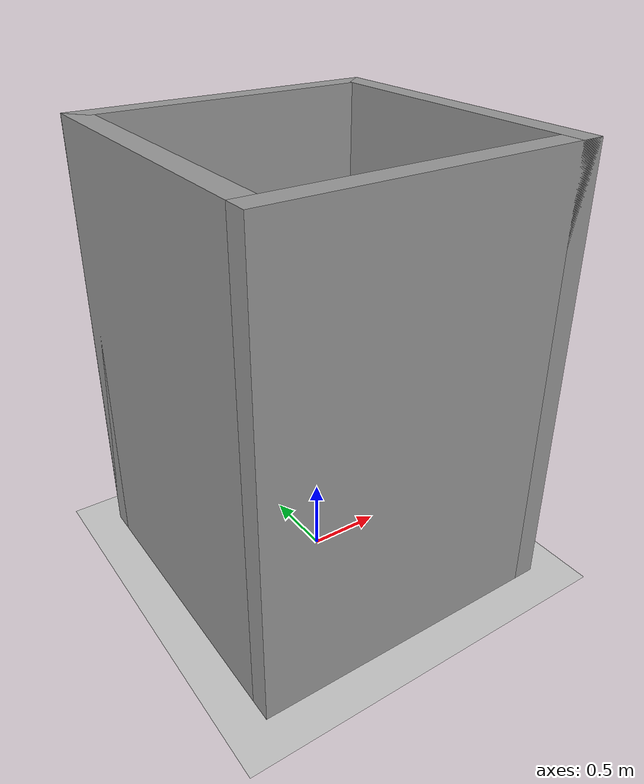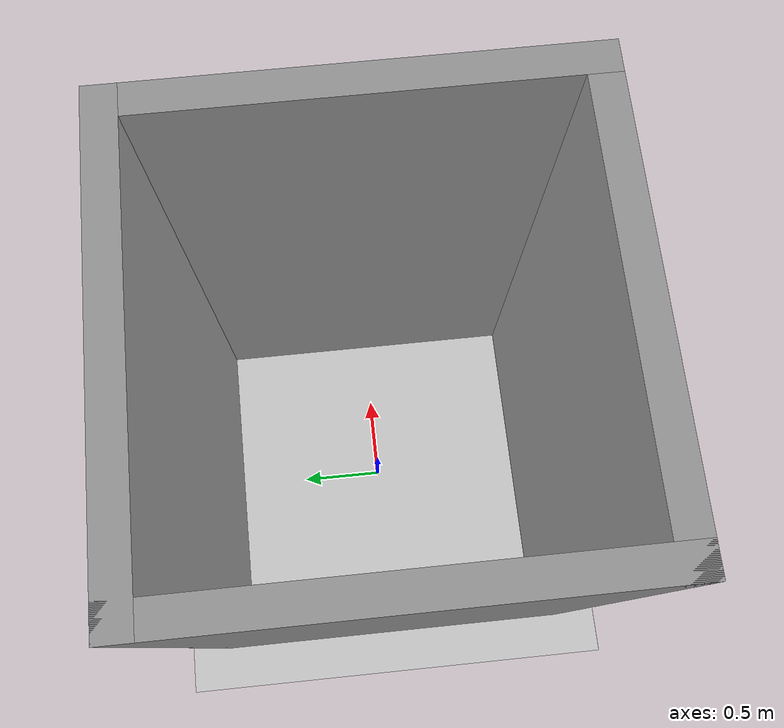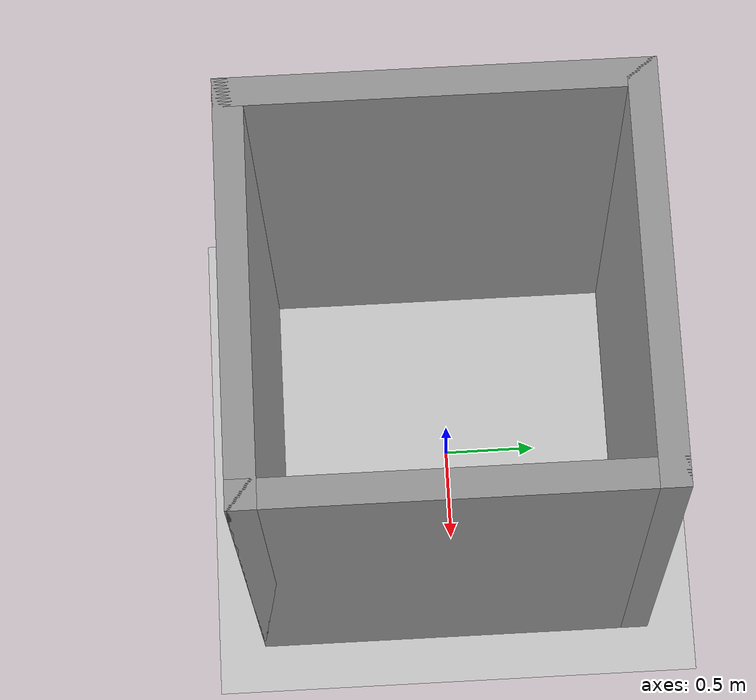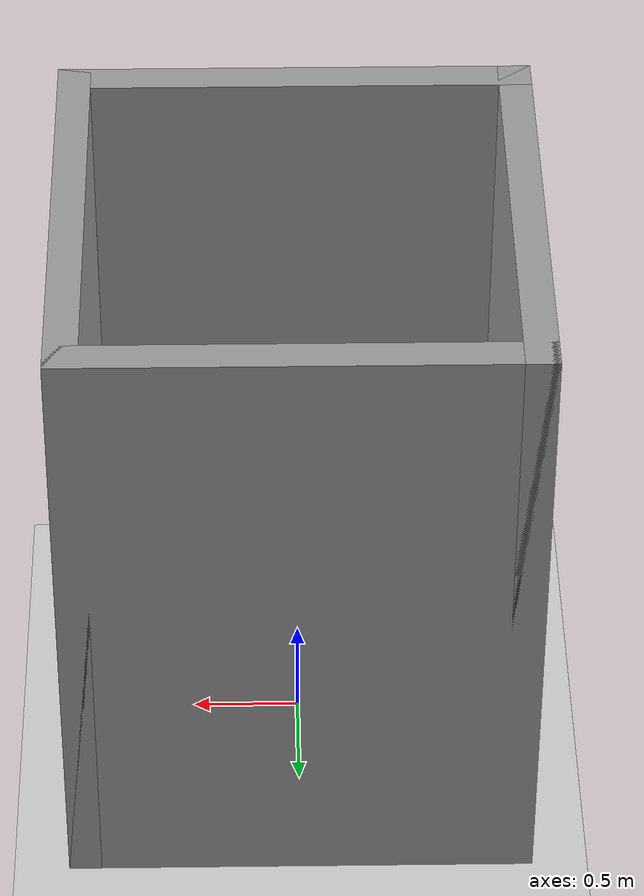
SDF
<sdf version="1.7">
 <world name="generated_world">
  <physics type="ode" name="default_physics">
   <gravity>0 0 -9.8</gravity>
   <real_time_update_rate>1000</real_time_update_rate>
   <max_step_size>0.001</max_step_size>
  </physics>
  <scene><ambient>0.4 0.4 0.4 1</ambient><background>0.7 0.7 0.7 1</background><shadows>true</shadows></scene>
  <light name="sun" type="directional">
   <pose>0 0 10 0 0 0</pose>
   <diffuse>0.8 0.8 0.8 1</diffuse>
   <specular>0.2 0.2 0.2 1</specular>
   <attenuation><range>1000</range></attenuation>
   <direction>0 0.5 -0.9</direction>
  </light>
  <model name="fallback_room_wall_north">
   <static>true</static>
   <pose>0.000 1.000 1.500 0.000 0.000 0.000</pose>
   <link name="wall_link">
    <visual name="wall_visual">
     <geometry><box><size>2.150 0.150 3.000</size></box></geometry>
     <material><script><name>Gazebo/Grey</name></script></material>
    </visual>
    <collision name="wall_collision">
     <geometry><box><size>2.150 0.150 3.000</size></box></geometry>
     <surface><friction><ode><mu>1.0</mu><mu2>1.0</mu2></ode></friction></surface>
    </collision>
   </link>
  </model>
  <model name="fallback_room_wall_east">
   <static>true</static>
   <pose>1.000 0.000 1.500 0.000 0.000 0.000</pose>
   <link name="wall_link">
    <visual name="wall_visual">
     <geometry><box><size>0.150 2.150 3.000</size></box></geometry>
     <material><script><name>Gazebo/Grey</name></script></material>
    </visual>
    <collision name="wall_collision">
     <geometry><box><size>0.150 2.150 3.000</size></box></geometry>
     <surface><friction><ode><mu>1.0</mu><mu2>1.0</mu2></ode></friction></surface>
    </collision>
   </link>
  </model>
  <model name="fallback_room_wall_south">
   <static>true</static>
   <pose>0.000 -1.000 1.500 0.000 0.000 0.000</pose>
   <link name="wall_link">
    <visual name="wall_visual">
     <geometry><box><size>2.150 0.150 3.000</size></box></geometry>
     <material><script><name>Gazebo/Grey</name></script></material>
    </visual>
    <collision name="wall_collision">
     <geometry><box><size>2.150 0.150 3.000</size></box></geometry>
     <surface><friction><ode><mu>1.0</mu><mu2>1.0</mu2></ode></friction></surface>
    </collision>
   </link>
  </model>
  <model name="fallback_room_wall_west">
   <static>true</static>
   <pose>-1.000 0.000 1.500 0.000 0.000 0.000</pose>
   <link name="wall_link">
    <visual name="wall_visual">
     <geometry><box><size>0.150 2.150 3.000</size></box></geometry>
     <material><script><name>Gazebo/Grey</name></script></material>
    </visual>
    <collision name="wall_collision">
     <geometry><box><size>0.150 2.150 3.000</size></box></geometry>
     <surface><friction><ode><mu>1.0</mu><mu2>1.0</mu2></ode></friction></surface>
    </collision>
   </link>
  </model>
  <include><uri>model://ground_plane</uri><name>ground_plane</name><static>true</static></include>
 </world>
</sdf>
